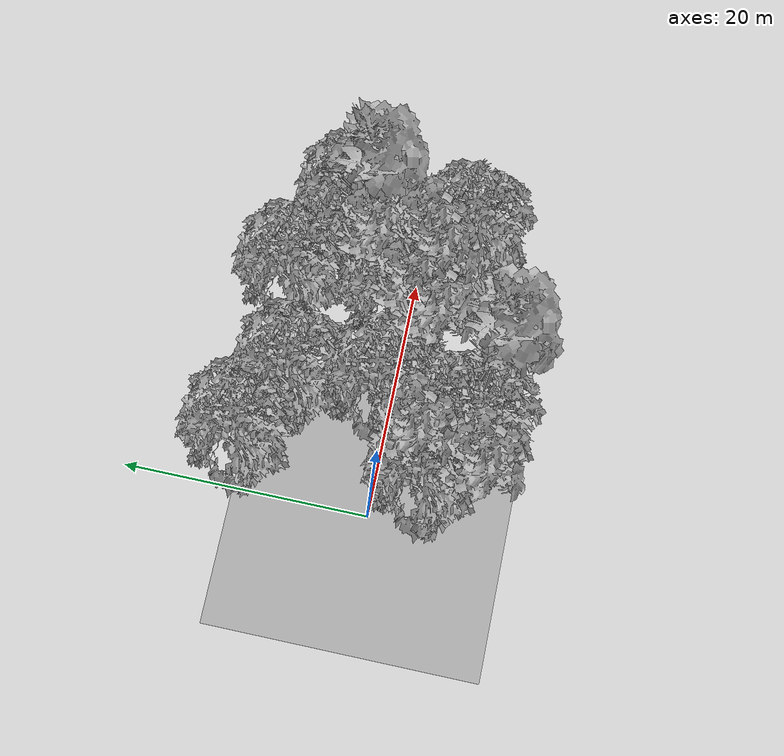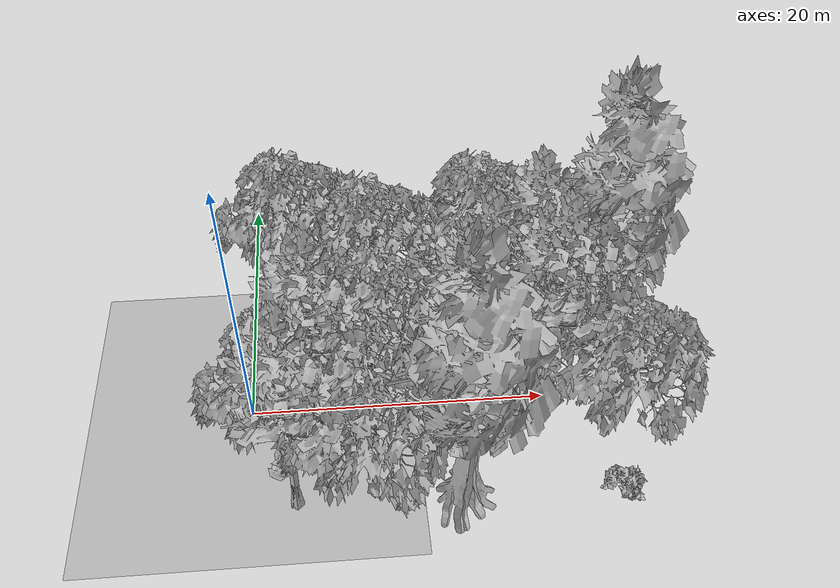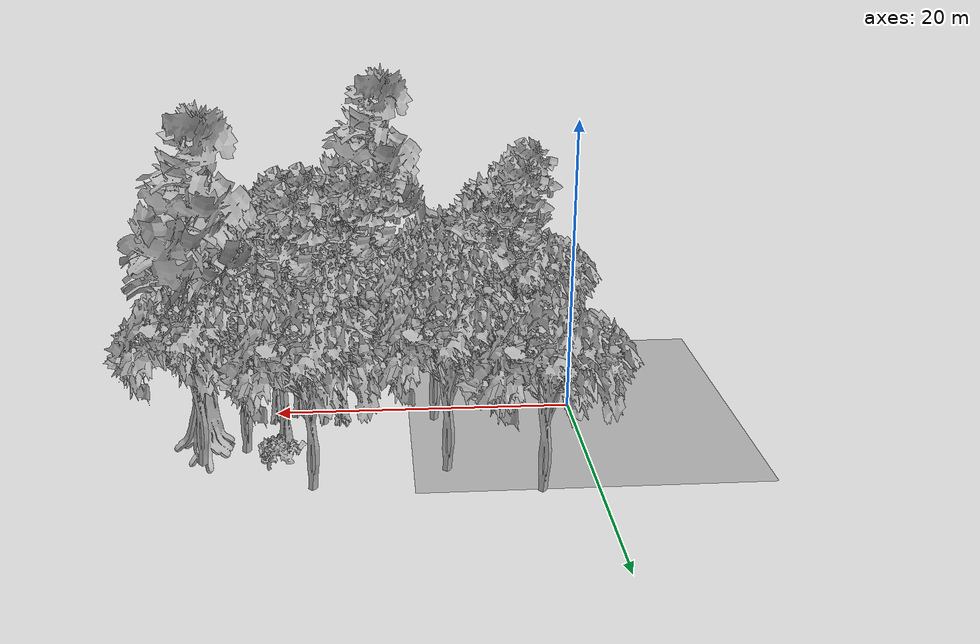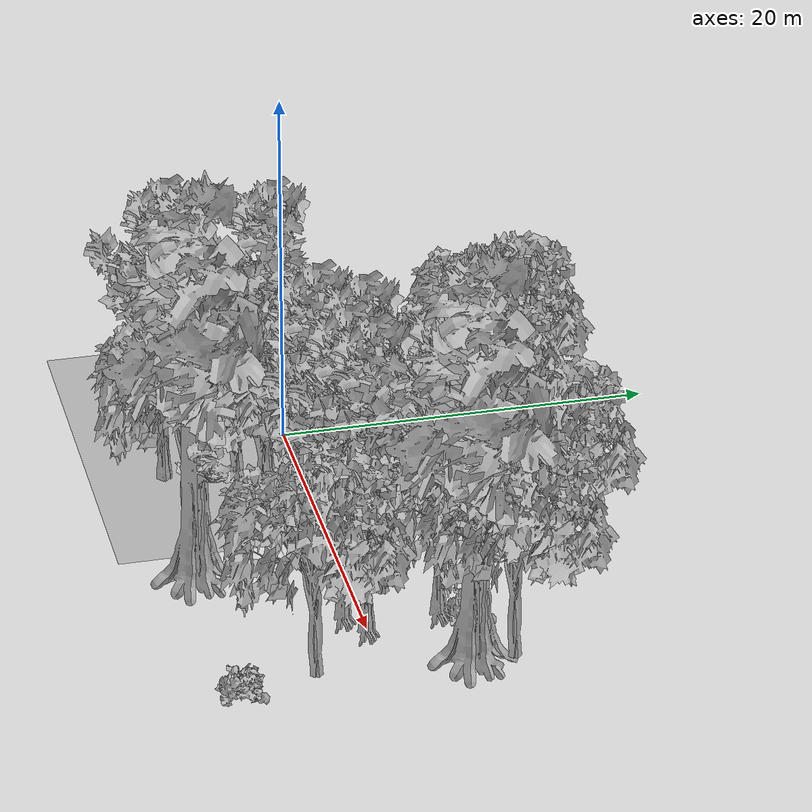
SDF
<sdf version="1.7">
 <world name="default">
  <model name="ground_plane">
   <static>1</static>
   <link name="link">
    <collision name="collision">
     <geometry><plane><normal>0 0 1</normal><size>100 100</size></plane></geometry>
     <surface><contact><ode><min_depth>0.01</min_depth><max_vel>0</max_vel></ode></contact></surface>
    </collision>
    <visual name="grass">
     <cast_shadows>0</cast_shadows>
     <geometry>
      <mesh>
       <scale>0.41000000000000003 0.41000000000000003 0.1</scale>
       <uri>file://grass_plane/meshes/grass_plane.dae</uri>
      </mesh>
     </geometry>
    </visual>
   </link>
  </model>
  <model name="Tree 19">
   <static>1</static>
   <pose>9.248120324372536 1.3311916147904839 0 1.57079 -0 0</pose>
   <link name="link">
    <collision name="collision">
     <geometry><mesh><scale>5 5 5</scale><uri>model://tree_2/meshes/tree_2.obj</uri></mesh></geometry>
    </collision>
    <visual name="visual">
     <geometry><mesh><scale>5 5 5</scale><uri>model://tree_2/meshes/tree_2.obj</uri></mesh></geometry>
    </visual>
   </link>
  </model>
  <model name="Tree 25">
   <static>1</static>
   <pose>23.995479880402968 6.620817760587805 0 1.57079 -0 0</pose>
   <link name="link">
    <collision name="collision">
     <geometry><mesh><scale>5 5 5</scale><uri>model://tree_2/meshes/tree_2.obj</uri></mesh></geometry>
    </collision>
    <visual name="visual">
     <geometry><mesh><scale>5 5 5</scale><uri>model://tree_2/meshes/tree_2.obj</uri></mesh></geometry>
    </visual>
   </link>
  </model>
  <model name="Tree 34">
   <static>1</static>
   <pose>15.589000933477323 0.5096532520394845 0 1.57079 -0 0</pose>
   <link name="link">
    <collision name="collision">
     <geometry><mesh><scale>5 5 5</scale><uri>model://tree_9/meshes/tree_9.obj</uri></mesh></geometry>
    </collision>
    <visual name="visual">
     <geometry><mesh><scale>5 5 5</scale><uri>model://tree_9/meshes/tree_9.obj</uri></mesh></geometry>
    </visual>
   </link>
  </model>
  <model name="Tree 37">
   <static>1</static>
   <pose>16.624176950822942 1.550773803191852 0 1.57079 -0 0</pose>
   <link name="link">
    <collision name="collision">
     <geometry><mesh><scale>5 5 5</scale><uri>model://tree_2/meshes/tree_2.obj</uri></mesh></geometry>
    </collision>
    <visual name="visual">
     <geometry><mesh><scale>5 5 5</scale><uri>model://tree_2/meshes/tree_2.obj</uri></mesh></geometry>
    </visual>
   </link>
  </model>
  <model name="Tree 44">
   <static>1</static>
   <pose>23.462081700805015 -3.4095084266519606 0 1.57079 -0 0</pose>
   <link name="link">
    <collision name="collision">
     <geometry><mesh><scale>5 5 5</scale><uri>model://tree_2/meshes/tree_2.obj</uri></mesh></geometry>
    </collision>
    <visual name="visual">
     <geometry><mesh><scale>5 5 5</scale><uri>model://tree_2/meshes/tree_2.obj</uri></mesh></geometry>
    </visual>
   </link>
  </model>
  <model name="Tree 97">
   <static>1</static>
   <pose>2.980153111615863 -7.103848919007191 0 1.57079 -0 0</pose>
   <link name="link">
    <collision name="collision">
     <geometry><mesh><scale>5 5 5</scale><uri>model://tree_9/meshes/tree_9.obj</uri></mesh></geometry>
    </collision>
    <visual name="visual">
     <geometry><mesh><scale>5 5 5</scale><uri>model://tree_9/meshes/tree_9.obj</uri></mesh></geometry>
    </visual>
   </link>
  </model>
  <model name="Tree 116">
   <static>1</static>
   <pose>13.90707851654259 -1.4874954662497757 0 1.57079 -0 0</pose>
   <link name="link">
    <collision name="collision">
     <geometry><mesh><scale>5 5 5</scale><uri>model://tree_9/meshes/tree_9.obj</uri></mesh></geometry>
    </collision>
    <visual name="visual">
     <geometry><mesh><scale>5 5 5</scale><uri>model://tree_9/meshes/tree_9.obj</uri></mesh></geometry>
    </visual>
   </link>
  </model>
  <model name="Tree 118">
   <static>1</static>
   <pose>3.3024279595389103 11.099374552851735 0 1.57079 -0 0</pose>
   <link name="link">
    <collision name="collision">
     <geometry><mesh><scale>5 5 5</scale><uri>model://tree_2/meshes/tree_2.obj</uri></mesh></geometry>
    </collision>
    <visual name="visual">
     <geometry><mesh><scale>5 5 5</scale><uri>model://tree_2/meshes/tree_2.obj</uri></mesh></geometry>
    </visual>
   </link>
  </model>
  <model name="Tree 184">
   <static>1</static>
   <pose>18.524066527886006 -0.8828837480438807 0 1.57079 -0 0</pose>
   <link name="link">
    <collision name="collision">
     <geometry><mesh><scale>5 5 5</scale><uri>model://tree_9/meshes/tree_9.obj</uri></mesh></geometry>
    </collision>
    <visual name="visual">
     <geometry><mesh><scale>5 5 5</scale><uri>model://tree_9/meshes/tree_9.obj</uri></mesh></geometry>
    </visual>
   </link>
  </model>
  <model name="Tree 213">
   <static>1</static>
   <pose>7.777345805694729 -6.773553840340121 0 1.57079 -0 0</pose>
   <link name="link">
    <collision name="collision">
     <geometry><mesh><scale>5 5 5</scale><uri>model://tree_2/meshes/tree_2.obj</uri></mesh></geometry>
    </collision>
    <visual name="visual">
     <geometry><mesh><scale>5 5 5</scale><uri>model://tree_2/meshes/tree_2.obj</uri></mesh></geometry>
    </visual>
   </link>
  </model>
  <model name="Tree 268">
   <static>1</static>
   <pose>8.845376184661752 8.26988138246685 0 1.57079 -0 0</pose>
   <link name="link">
    <collision name="collision">
     <geometry><mesh><scale>5 5 5</scale><uri>model://tree_2/meshes/tree_2.obj</uri></mesh></geometry>
    </collision>
    <visual name="visual">
     <geometry><mesh><scale>5 5 5</scale><uri>model://tree_2/meshes/tree_2.obj</uri></mesh></geometry>
    </visual>
   </link>
  </model>
  <model name="Tree 296">
   <static>1</static>
   <pose>7.882287897154832 -2.7362110473029304 0 1.57079 -0 0</pose>
   <link name="link">
    <collision name="collision">
     <geometry><mesh><scale>5 5 5</scale><uri>model://tree_2/meshes/tree_2.obj</uri></mesh></geometry>
    </collision>
    <visual name="visual">
     <geometry><mesh><scale>5 5 5</scale><uri>model://tree_2/meshes/tree_2.obj</uri></mesh></geometry>
    </visual>
   </link>
  </model>
  <model name="Tree 300">
   <static>1</static>
   <pose>19.173631644656624 3.9367359095783385 0 1.57079 -0 0</pose>
   <link name="link">
    <collision name="collision">
     <geometry><mesh><scale>5 5 5</scale><uri>model://tree_9/meshes/tree_9.obj</uri></mesh></geometry>
    </collision>
    <visual name="visual">
     <geometry><mesh><scale>5 5 5</scale><uri>model://tree_9/meshes/tree_9.obj</uri></mesh></geometry>
    </visual>
   </link>
  </model>
  <model name="Tree 324">
   <static>1</static>
   <pose>17.035311338334907 10.012206962439876 0 1.57079 -0 0</pose>
   <link name="link">
    <collision name="collision">
     <geometry><mesh><scale>5 5 5</scale><uri>model://tree_2/meshes/tree_2.obj</uri></mesh></geometry>
    </collision>
    <visual name="visual">
     <geometry><mesh><scale>5 5 5</scale><uri>model://tree_2/meshes/tree_2.obj</uri></mesh></geometry>
    </visual>
   </link>
  </model>
  <model name="Tree 347">
   <static>1</static>
   <pose>2.840165784560888 -3.1890552691516945 0 1.57079 -0 0</pose>
   <link name="link">
    <collision name="collision">
     <geometry><mesh><scale>5 5 5</scale><uri>model://tree_2/meshes/tree_2.obj</uri></mesh></geometry>
    </collision>
    <visual name="visual">
     <geometry><mesh><scale>5 5 5</scale><uri>model://tree_2/meshes/tree_2.obj</uri></mesh></geometry>
    </visual>
   </link>
  </model>
  <model name="Tree 377">
   <static>1</static>
   <pose>4.436704550722858 -1.7964146817775557 0 1.57079 -0 0</pose>
   <link name="link">
    <collision name="collision">
     <geometry><mesh><scale>5 5 5</scale><uri>model://tree_9/meshes/tree_9.obj</uri></mesh></geometry>
    </collision>
    <visual name="visual">
     <geometry><mesh><scale>5 5 5</scale><uri>model://tree_9/meshes/tree_9.obj</uri></mesh></geometry>
    </visual>
   </link>
  </model>
  <model name="Tree 380">
   <static>1</static>
   <pose>24.061894090651336 4.59478984907696 0 1.57079 -0 0</pose>
   <link name="link">
    <collision name="collision">
     <geometry><mesh><scale>5 5 5</scale><uri>model://tree_4/meshes/tree_4.obj</uri></mesh></geometry>
    </collision>
    <visual name="visual">
     <geometry><mesh><scale>5 5 5</scale><uri>model://tree_4/meshes/tree_4.obj</uri></mesh></geometry>
    </visual>
   </link>
  </model>
  <model name="Tree 390">
   <static>1</static>
   <pose>21.429544230948565 5.136664924182469 0 1.57079 -0 0</pose>
   <link name="link">
    <collision name="collision">
     <geometry><mesh><scale>5 5 5</scale><uri>model://tree_2/meshes/tree_2.obj</uri></mesh></geometry>
    </collision>
    <visual name="visual">
     <geometry><mesh><scale>5 5 5</scale><uri>model://tree_2/meshes/tree_2.obj</uri></mesh></geometry>
    </visual>
   </link>
  </model>
  <model name="Tree 403">
   <static>1</static>
   <pose>13.391683993729728 -7.416144947524607 0 1.57079 -0 0</pose>
   <link name="link">
    <collision name="collision">
     <geometry><mesh><scale>5 5 5</scale><uri>model://tree_4/meshes/tree_4.obj</uri></mesh></geometry>
    </collision>
    <visual name="visual">
     <geometry><mesh><scale>5 5 5</scale><uri>model://tree_4/meshes/tree_4.obj</uri></mesh></geometry>
    </visual>
   </link>
  </model>
  <model name="Tree 427">
   <static>1</static>
   <pose>19.96392492285574 0.013606591931278444 0 1.57079 -0 0</pose>
   <link name="link">
    <collision name="collision">
     <geometry><mesh><scale>5 5 5</scale><uri>model://tree_9/meshes/tree_9.obj</uri></mesh></geometry>
    </collision>
    <visual name="visual">
     <geometry><mesh><scale>5 5 5</scale><uri>model://tree_9/meshes/tree_9.obj</uri></mesh></geometry>
    </visual>
   </link>
  </model>
  <model name="Bush 67">
   <static>1</static>
   <pose>19.427461910919533 5.434316127433725 0 1.57079 -0 0</pose>
   <link name="link">
    <collision name="collision">
     <geometry><mesh><scale>2 2 2</scale><uri>model://bush_2/meshes/bush_2.obj</uri></mesh></geometry>
    </collision>
    <visual name="visual">
     <geometry><mesh><scale>5 5 5</scale><uri>model://bush_2/meshes/bush_2.obj</uri></mesh></geometry>
    </visual>
   </link>
  </model>
  <model name="Bush 113">
   <static>1</static>
   <pose>23.937039367234945 -7.277354577937992 0 1.57079 -0 0</pose>
   <link name="link">
    <collision name="collision">
     <geometry><mesh><scale>2 2 2</scale><uri>model://bush_2/meshes/bush_2.obj</uri></mesh></geometry>
    </collision>
    <visual name="visual">
     <geometry><mesh><scale>5 5 5</scale><uri>model://bush_2/meshes/bush_2.obj</uri></mesh></geometry>
    </visual>
   </link>
  </model>
 </world>
</sdf>
